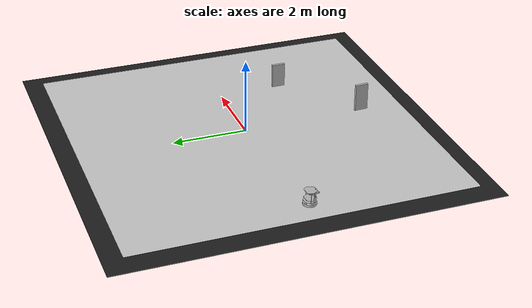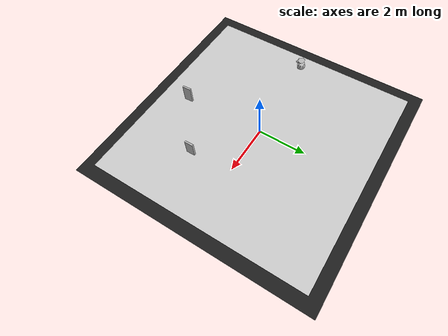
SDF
<sdf version="1.7">
 <world name="default">
  <scene>
   <ambient>0 0 0 1</ambient>
   <shadows>0</shadows>
   <grid>0</grid>
   <background>0.7 0.7 0.7 1</background>
  </scene>
  <light name="sun" type="directional">
   <pose>0 0 10 0 -0 0</pose>
   <diffuse>0.8 0.8 0.8 1</diffuse>
   <specular>0.1 0.1 0.1 1</specular>
   <attenuation>
    <range>1000</range>
    <constant>0.9</constant>
    <linear>0.01</linear>
    <quadratic>0.001</quadratic>
   </attenuation>
   <direction>-0.5 0.5 -1</direction>
   <spot><inner_angle>0</inner_angle><outer_angle>0</outer_angle><falloff>0</falloff></spot>
  </light>
  <model name="ground2">
   <pose>0 0 -0.1 0 -0 0</pose>
   <static>1</static>
   <link name="ground">
    <collision name="ground_coll"><geometry><box><size>8 8 0.01</size></box></geometry></collision>
    <visual name="ground_vis">
     <geometry><box><size>10 10 0.01</size></box></geometry>
     <material>
      <script><uri>file://media/materials/scripts/gazebo.material</uri><name>Gazebo/FlatBlack</name></script>
     </material>
    </visual>
   </link>
  </model>
  <gravity>0 0 -9.8</gravity>
  <magnetic_field>6e-06 2.3e-05 -4.2e-05</magnetic_field>
  <atmosphere type="adiabatic"/>
  <physics name="default_physics" default="0" type="ode">
   <max_step_size>0.001</max_step_size>
   <real_time_factor>1</real_time_factor>
   <real_time_update_rate>1000</real_time_update_rate>
  </physics>
  <spherical_coordinates>
   <surface_model>EARTH_WGS84</surface_model>
   <latitude_deg>0</latitude_deg>
   <longitude_deg>0</longitude_deg>
   <elevation>0</elevation>
   <heading_deg>0</heading_deg>
  </spherical_coordinates>
  <light name="user_point_light_1" type="point">
   <pose>-1.64815 0.604519 1 0 -0 0</pose>
   <diffuse>0.5 0.5 0.5 1</diffuse>
   <specular>0.1 0.1 0.1 1</specular>
   <attenuation>
    <range>20</range>
    <constant>0.5</constant>
    <linear>0.01</linear>
    <quadratic>0.001</quadratic>
   </attenuation>
   <cast_shadows>0</cast_shadows>
   <direction>0 0 -1</direction>
   <spot><inner_angle>0</inner_angle><outer_angle>0</outer_angle><falloff>0</falloff></spot>
  </light>
  <light name="user_point_light_2" type="point">
   <pose>1.63854 1.69565 1 0 -0 0</pose>
   <diffuse>0.5 0.5 0.5 1</diffuse>
   <specular>0.1 0.1 0.1 1</specular>
   <attenuation>
    <range>20</range>
    <constant>0.5</constant>
    <linear>0.01</linear>
    <quadratic>0.001</quadratic>
   </attenuation>
   <cast_shadows>0</cast_shadows>
   <direction>0 0 -1</direction>
   <spot><inner_angle>0</inner_angle><outer_angle>0</outer_angle><falloff>0</falloff></spot>
  </light>
  <light name="user_point_light_3" type="point">
   <pose>0.42 -3.31 1 0 -0 0</pose>
   <diffuse>0.5 0.5 0.5 1</diffuse>
   <specular>0.1 0.1 0.1 1</specular>
   <attenuation>
    <range>20</range>
    <constant>0.5</constant>
    <linear>0.01</linear>
    <quadratic>0.001</quadratic>
   </attenuation>
   <cast_shadows>0</cast_shadows>
   <direction>0 0 -1</direction>
   <spot><inner_angle>0</inner_angle><outer_angle>0</outer_angle><falloff>0</falloff></spot>
  </light>
  <model name="mobile_base">
   <link name="base_footprint">
    <inertial>
     <pose>-0.009496 1.3e-05 0.135573 0 -0 0</pose>
     <mass>4.9213</mass>
     <inertia>
      <ixx>0.142129</ixx>
      <ixy>-4.09257e-06</ixy>
      <ixz>0.0154899</ixz>
      <iyy>0.140784</iyy>
      <iyz>6.52071e-06</iyz>
      <izz>0.0801071</izz>
     </inertia>
    </inertial>
    <collision name="base_footprint_fixed_joint_lump__base_collision">
     <pose>0 0 0.06969 0 -0 0</pose>
     <geometry><cylinder><length>0.10938</length><radius>0.178</radius></cylinder></geometry>
    </collision>
    <collision name="base_footprint_fixed_joint_lump__camera_link_collision_1">
     <pose>-0.118 0 0.2812 0 -0 0</pose>
     <geometry><box><size>0.07271 0.27794 0.073</size></box></geometry>
    </collision>
    <collision name="base_footprint_fixed_joint_lump__caster_back_link_collision_2">
     <pose>-0.135 0 0.0192 -1.5708 0 0</pose>
     <geometry><cylinder><length>0.0176</length><radius>0.017</radius></cylinder></geometry>
     <surface>
      <contact><ode><kp>1e+06</kp><kd>100</kd><max_vel>1</max_vel><min_depth>0.001</min_depth></ode></contact>
      <friction><ode><mu>0</mu><mu2>0</mu2></ode></friction>
     </surface>
    </collision>
    <collision name="base_footprint_fixed_joint_lump__caster_front_link_collision_3">
     <pose>0.115 0 0.0172 -1.5708 0 0</pose>
     <geometry><cylinder><length>0.0176</length><radius>0.017</radius></cylinder></geometry>
     <surface>
      <contact><ode><kp>1e+06</kp><kd>100</kd><max_vel>1</max_vel><min_depth>0.001</min_depth></ode></contact>
      <friction><ode><mu>0</mu><mu2>0</mu2></ode></friction>
     </surface>
    </collision>
    <collision name="base_footprint_fixed_joint_lump__plate_bottom_link_collision_4">
     <pose>0 0 0.1408 0 -0 0</pose>
     <geometry><cylinder><length>0.006</length><radius>0.17</radius></cylinder></geometry>
    </collision>
    <collision name="base_footprint_fixed_joint_lump__plate_middle_link_collision_5">
     <pose>0 0 0.1976 0 -0 0</pose>
     <geometry>
      <mesh>
       <scale>0.001 0.001 0.001</scale>
       <uri>/home/neen/ros_workshop_ws/src/turtlebot/turtlebot_description/meshes/stacks/hexagons/plate_simple.stl</uri>
      </mesh>
     </geometry>
    </collision>
    <collision name="base_footprint_fixed_joint_lump__plate_top_link_collision_6">
     <pose>0 0 0.4068 0 -0 0</pose>
     <geometry>
      <mesh>
       <scale>0.001 0.001 0.001</scale>
       <uri>/home/neen/ros_workshop_ws/src/turtlebot/turtlebot_description/meshes/stacks/hexagons/plate_simple.stl</uri>
      </mesh>
     </geometry>
    </collision>
    <collision name="base_footprint_fixed_joint_lump__pole_bottom_0_link_collision_7">
     <pose>0.12 0.082 0.113 0 -0 0</pose>
     <geometry><cylinder><length>0.0492</length><radius>0.006</radius></cylinder></geometry>
    </collision>
    <collision name="base_footprint_fixed_joint_lump__pole_bottom_1_link_collision_8">
     <pose>0.055 0.12 0.113 0 -0 0</pose>
     <geometry><cylinder><length>0.0492</length><radius>0.006</radius></cylinder></geometry>
    </collision>
    <collision name="base_footprint_fixed_joint_lump__pole_bottom_2_link_collision_9">
     <pose>-0.055 0.12 0.113 0 -0 0</pose>
     <geometry><cylinder><length>0.0492</length><radius>0.006</radius></cylinder></geometry>
    </collision>
    <collision name="base_footprint_fixed_joint_lump__pole_bottom_3_link_collision_10">
     <pose>0.12 -0.082 0.113 0 -0 0</pose>
     <geometry><cylinder><length>0.0492</length><radius>0.006</radius></cylinder></geometry>
    </collision>
    <collision name="base_footprint_fixed_joint_lump__pole_bottom_4_link_collision_11">
     <pose>0.055 -0.12 0.113 0 -0 0</pose>
     <geometry><cylinder><length>0.0492</length><radius>0.006</radius></cylinder></geometry>
    </collision>
    <collision name="base_footprint_fixed_joint_lump__pole_bottom_5_link_collision_12">
     <pose>-0.055 -0.12 0.113 0 -0 0</pose>
     <geometry><cylinder><length>0.0492</length><radius>0.006</radius></cylinder></geometry>
    </collision>
    <collision name="base_footprint_fixed_joint_lump__pole_kinect_0_link_collision_13">
     <pose>-0.1024 0.098 0.2474 0 -0 0</pose>
     <geometry><cylinder><length>0.0936</length><radius>0.006</radius></cylinder></geometry>
    </collision>
    <collision name="base_footprint_fixed_joint_lump__pole_kinect_1_link_collision_14">
     <pose>-0.1024 -0.098 0.2474 0 -0 0</pose>
     <geometry><cylinder><length>0.0936</length><radius>0.006</radius></cylinder></geometry>
    </collision>
    <collision name="base_footprint_fixed_joint_lump__pole_middle_0_link_collision_15">
     <pose>0.0381 0.1505 0.1742 0 -0 0</pose>
     <geometry><cylinder><length>0.0608</length><radius>0.006</radius></cylinder></geometry>
    </collision>
    <collision name="base_footprint_fixed_joint_lump__pole_middle_1_link_collision_16">
     <pose>0.0381 -0.1505 0.1742 0 -0 0</pose>
     <geometry><cylinder><length>0.0608</length><radius>0.006</radius></cylinder></geometry>
    </collision>
    <collision name="base_footprint_fixed_joint_lump__pole_middle_2_link_collision_17">
     <pose>-0.0381 0.1505 0.1742 0 -0 0</pose>
     <geometry><cylinder><length>0.0608</length><radius>0.006</radius></cylinder></geometry>
    </collision>
    <collision name="base_footprint_fixed_joint_lump__pole_middle_3_link_collision_18">
     <pose>-0.0381 -0.1505 0.1742 0 -0 0</pose>
     <geometry><cylinder><length>0.0608</length><radius>0.006</radius></cylinder></geometry>
    </collision>
    <collision name="base_footprint_fixed_joint_lump__pole_top_0_link_collision_19">
     <pose>0.0381 0.1505 0.3022 0 -0 0</pose>
     <geometry><cylinder><length>0.2032</length><radius>0.006</radius></cylinder></geometry>
    </collision>
    <collision name="base_footprint_fixed_joint_lump__pole_top_1_link_collision_20">
     <pose>0.0381 -0.1505 0.3022 0 -0 0</pose>
     <geometry><cylinder><length>0.2032</length><radius>0.006</radius></cylinder></geometry>
    </collision>
    <collision name="base_footprint_fixed_joint_lump__pole_top_2_link_collision_21">
     <pose>-0.0381 0.1505 0.3022 0 -0 0</pose>
     <geometry><cylinder><length>0.2032</length><radius>0.006</radius></cylinder></geometry>
    </collision>
    <collision name="base_footprint_fixed_joint_lump__pole_top_3_link_collision_22">
     <pose>-0.0381 -0.1505 0.3022 0 -0 0</pose>
     <geometry><cylinder><length>0.2032</length><radius>0.006</radius></cylinder></geometry>
    </collision>
    <visual name="base_footprint_fixed_joint_lump__base_link_visual">
     <pose>0.001 0 0.06219 0 -0 0</pose>
     <geometry>
      <mesh>
       <scale>1 1 1</scale>
       <uri>/home/neen/ros_workshop_ws/src/kobuki/kobuki_description/meshes/main_body.dae</uri>
      </mesh>
     </geometry>
    </visual>
    <visual name="base_footprint_fixed_joint_lump__camera_link_visual_1">
     <pose>-0.118 0 0.2812 0 -0 1.5708</pose>
     <geometry>
      <mesh>
       <scale>1 1 1</scale>
       <uri>/home/neen/ros_workshop_ws/src/turtlebot/turtlebot_description/meshes/sensors/kinect.dae</uri>
      </mesh>
     </geometry>
    </visual>
    <visual name="base_footprint_fixed_joint_lump__plate_bottom_link_visual_2">
     <pose>0.02364 0 0.1408 0 -0 0</pose>
     <geometry>
      <mesh>
       <scale>1 1 1</scale>
       <uri>/home/neen/ros_workshop_ws/src/turtlebot/turtlebot_description/meshes/stacks/hexagons/plate_bottom.dae</uri>
      </mesh>
     </geometry>
    </visual>
    <visual name="base_footprint_fixed_joint_lump__plate_middle_link_visual_3">
     <pose>-0.01364 0 0.1976 0 -0 0</pose>
     <geometry>
      <mesh>
       <scale>1 1 1</scale>
       <uri>/home/neen/ros_workshop_ws/src/turtlebot/turtlebot_description/meshes/stacks/hexagons/plate_middle.dae</uri>
      </mesh>
     </geometry>
    </visual>
    <visual name="base_footprint_fixed_joint_lump__plate_top_link_visual_4">
     <pose>-0.01364 0 0.4068 0 -0 0</pose>
     <geometry>
      <mesh>
       <scale>1 1 1</scale>
       <uri>/home/neen/ros_workshop_ws/src/turtlebot/turtlebot_description/meshes/stacks/hexagons/plate_top.dae</uri>
      </mesh>
     </geometry>
    </visual>
    <visual name="base_footprint_fixed_joint_lump__pole_bottom_0_link_visual_5">
     <pose>0.12 0.082 0.113 0 -0 0</pose>
     <geometry>
      <mesh>
       <scale>1 1 1</scale>
       <uri>/home/neen/ros_workshop_ws/src/turtlebot/turtlebot_description/meshes/stacks/hexagons/pole_bottom.dae</uri>
      </mesh>
     </geometry>
    </visual>
    <visual name="base_footprint_fixed_joint_lump__pole_bottom_1_link_visual_6">
     <pose>0.055 0.12 0.113 0 -0 0</pose>
     <geometry>
      <mesh>
       <scale>1 1 1</scale>
       <uri>/home/neen/ros_workshop_ws/src/turtlebot/turtlebot_description/meshes/stacks/hexagons/pole_bottom.dae</uri>
      </mesh>
     </geometry>
    </visual>
    <visual name="base_footprint_fixed_joint_lump__pole_bottom_2_link_visual_7">
     <pose>-0.055 0.12 0.113 0 -0 0</pose>
     <geometry>
      <mesh>
       <scale>1 1 1</scale>
       <uri>/home/neen/ros_workshop_ws/src/turtlebot/turtlebot_description/meshes/stacks/hexagons/pole_bottom.dae</uri>
      </mesh>
     </geometry>
    </visual>
    <visual name="base_footprint_fixed_joint_lump__pole_bottom_3_link_visual_8">
     <pose>0.12 -0.082 0.113 0 -0 0</pose>
     <geometry>
      <mesh>
       <scale>1 1 1</scale>
       <uri>/home/neen/ros_workshop_ws/src/turtlebot/turtlebot_description/meshes/stacks/hexagons/pole_bottom.dae</uri>
      </mesh>
     </geometry>
    </visual>
    <visual name="base_footprint_fixed_joint_lump__pole_bottom_4_link_visual_9">
     <pose>0.055 -0.12 0.113 0 -0 0</pose>
     <geometry>
      <mesh>
       <scale>1 1 1</scale>
       <uri>/home/neen/ros_workshop_ws/src/turtlebot/turtlebot_description/meshes/stacks/hexagons/pole_bottom.dae</uri>
      </mesh>
     </geometry>
    </visual>
    <visual name="base_footprint_fixed_joint_lump__pole_bottom_5_link_visual_10">
     <pose>-0.055 -0.12 0.113 0 -0 0</pose>
     <geometry>
      <mesh>
       <scale>1 1 1</scale>
       <uri>/home/neen/ros_workshop_ws/src/turtlebot/turtlebot_description/meshes/stacks/hexagons/pole_bottom.dae</uri>
      </mesh>
     </geometry>
    </visual>
    <visual name="base_footprint_fixed_joint_lump__pole_kinect_0_link_visual_11">
     <pose>-0.1024 0.098 0.2474 0 -0 0</pose>
     <geometry>
      <mesh>
       <scale>1 1 1</scale>
       <uri>/home/neen/ros_workshop_ws/src/turtlebot/turtlebot_description/meshes/stacks/hexagons/pole_kinect.dae</uri>
      </mesh>
     </geometry>
    </visual>
    <visual name="base_footprint_fixed_joint_lump__pole_kinect_1_link_visual_12">
     <pose>-0.1024 -0.098 0.2474 0 -0 0</pose>
     <geometry>
      <mesh>
       <scale>1 1 1</scale>
       <uri>/home/neen/ros_workshop_ws/src/turtlebot/turtlebot_description/meshes/stacks/hexagons/pole_kinect.dae</uri>
      </mesh>
     </geometry>
    </visual>
    <visual name="base_footprint_fixed_joint_lump__pole_middle_0_link_visual_13">
     <pose>0.0381 0.1505 0.1742 3.14159 -0 3.14159</pose>
     <geometry>
      <mesh>
       <scale>1 1 1</scale>
       <uri>/home/neen/ros_workshop_ws/src/turtlebot/turtlebot_description/meshes/stacks/hexagons/pole_middle.dae</uri>
      </mesh>
     </geometry>
    </visual>
    <visual name="base_footprint_fixed_joint_lump__pole_middle_1_link_visual_14">
     <pose>0.0381 -0.1505 0.1742 3.14159 -0 3.14159</pose>
     <geometry>
      <mesh>
       <scale>1 1 1</scale>
       <uri>/home/neen/ros_workshop_ws/src/turtlebot/turtlebot_description/meshes/stacks/hexagons/pole_middle.dae</uri>
      </mesh>
     </geometry>
    </visual>
    <visual name="base_footprint_fixed_joint_lump__pole_middle_2_link_visual_15">
     <pose>-0.0381 0.1505 0.1742 3.14159 -0 3.14159</pose>
     <geometry>
      <mesh>
       <scale>1 1 1</scale>
       <uri>/home/neen/ros_workshop_ws/src/turtlebot/turtlebot_description/meshes/stacks/hexagons/pole_middle.dae</uri>
      </mesh>
     </geometry>
    </visual>
    <visual name="base_footprint_fixed_joint_lump__pole_middle_3_link_visual_16">
     <pose>-0.0381 -0.1505 0.1742 3.14159 -0 3.14159</pose>
     <geometry>
      <mesh>
       <scale>1 1 1</scale>
       <uri>/home/neen/ros_workshop_ws/src/turtlebot/turtlebot_description/meshes/stacks/hexagons/pole_middle.dae</uri>
      </mesh>
     </geometry>
    </visual>
    <visual name="base_footprint_fixed_joint_lump__pole_top_0_link_visual_17">
     <pose>0.0381 0.1505 0.3022 0 -0 0</pose>
     <geometry>
      <mesh>
       <scale>1 1 1</scale>
       <uri>/home/neen/ros_workshop_ws/src/turtlebot/turtlebot_description/meshes/stacks/hexagons/pole_top.dae</uri>
      </mesh>
     </geometry>
    </visual>
    <visual name="base_footprint_fixed_joint_lump__pole_top_1_link_visual_18">
     <pose>0.0381 -0.1505 0.3022 0 -0 0</pose>
     <geometry>
      <mesh>
       <scale>1 1 1</scale>
       <uri>/home/neen/ros_workshop_ws/src/turtlebot/turtlebot_description/meshes/stacks/hexagons/pole_top.dae</uri>
      </mesh>
     </geometry>
    </visual>
    <visual name="base_footprint_fixed_joint_lump__pole_top_2_link_visual_19">
     <pose>-0.0381 0.1505 0.3022 0 -0 0</pose>
     <geometry>
      <mesh>
       <scale>1 1 1</scale>
       <uri>/home/neen/ros_workshop_ws/src/turtlebot/turtlebot_description/meshes/stacks/hexagons/pole_top.dae</uri>
      </mesh>
     </geometry>
    </visual>
    <visual name="base_footprint_fixed_joint_lump__pole_top_3_link_visual_20">
     <pose>-0.0381 -0.1505 0.3022 0 -0 0</pose>
     <geometry>
      <mesh>
       <scale>1 1 1</scale>
       <uri>/home/neen/ros_workshop_ws/src/turtlebot/turtlebot_description/meshes/stacks/hexagons/pole_top.dae</uri>
      </mesh>
     </geometry>
    </visual>
    <sensor name="bumpers" type="contact">
     <always_on>1</always_on>
     <update_rate>50</update_rate>
     <visualize>1</visualize>
     <contact>
      <collision>base_footprint_fixed_joint_lump__base_collision</collision>
      <topic>__default_topic__</topic>
     </contact>
     <pose>0 0 0.0102 0 -0 0</pose>
    </sensor>
    <sensor name="camera" type="depth">
     <always_on>1</always_on>
     <update_rate>20</update_rate>
     <camera>
      <horizontal_fov>1.0472</horizontal_fov>
      <image><format>B8G8R8</format><width>640</width><height>480</height></image>
      <clip><near>0.05</near><far>8</far></clip>
     </camera>
     <plugin name="kinect_camera_controller" filename="libgazebo_ros_openni_kinect.so">
      <cameraName>camera</cameraName>
      <alwaysOn>1</alwaysOn>
      <updateRate>10</updateRate>
      <imageTopicName>rgb/image_raw</imageTopicName>
      <depthImageTopicName>depth/image_raw</depthImageTopicName>
      <pointCloudTopicName>depth/points</pointCloudTopicName>
      <cameraInfoTopicName>rgb/camera_info</cameraInfoTopicName>
      <depthImageCameraInfoTopicName>depth/camera_info</depthImageCameraInfoTopicName>
      <frameName>camera_depth_optical_frame</frameName>
      <baseline>0.1</baseline>
      <distortion_k1>0.0</distortion_k1>
      <distortion_k2>0.0</distortion_k2>
      <distortion_k3>0.0</distortion_k3>
      <distortion_t1>0.0</distortion_t1>
      <distortion_t2>0.0</distortion_t2>
      <pointCloudCutoff>0.4</pointCloudCutoff>
      <robotNamespace>/</robotNamespace>
     </plugin>
     <pose>-0.118 0 0.2812 0 -0 0</pose>
    </sensor>
    <sensor name="cliff_sensor_front" type="ray">
     <always_on>1</always_on>
     <update_rate>50</update_rate>
     <visualize>1</visualize>
     <ray>
      <scan>
       <horizontal>
        <samples>50</samples>
        <resolution>1</resolution>
        <min_angle>-0.0436</min_angle>
        <max_angle>0.0436</max_angle>
       </horizontal>
       <vertical><samples>1</samples><min_angle>0</min_angle><max_angle>0</max_angle></vertical>
      </scan>
      <range><min>0.01</min><max>0.15</max><resolution>1</resolution></range>
     </ray>
     <pose>0.156 0 0.0316 3.14159 1.57079 3.14159</pose>
    </sensor>
    <sensor name="cliff_sensor_left" type="ray">
     <always_on>1</always_on>
     <update_rate>50</update_rate>
     <visualize>1</visualize>
     <ray>
      <scan>
       <horizontal>
        <samples>50</samples>
        <resolution>1</resolution>
        <min_angle>-0.0436</min_angle>
        <max_angle>0.0436</max_angle>
       </horizontal>
       <vertical><samples>1</samples><min_angle>0</min_angle><max_angle>0</max_angle></vertical>
      </scan>
      <range><min>0.01</min><max>0.15</max><resolution>1</resolution></range>
     </ray>
     <pose>0.08734 0.13601 0.0316 3.14159 1.57079 3.14159</pose>
    </sensor>
    <sensor name="cliff_sensor_right" type="ray">
     <always_on>1</always_on>
     <update_rate>50</update_rate>
     <visualize>1</visualize>
     <ray>
      <scan>
       <horizontal>
        <samples>50</samples>
        <resolution>1</resolution>
        <min_angle>-0.0436</min_angle>
        <max_angle>0.0436</max_angle>
       </horizontal>
       <vertical><samples>1</samples><min_angle>0</min_angle><max_angle>0</max_angle></vertical>
      </scan>
      <range><min>0.01</min><max>0.15</max><resolution>1</resolution></range>
     </ray>
     <pose>0.085 -0.13601 0.0316 3.14159 1.57079 3.14159</pose>
    </sensor>
    <sensor name="imu" type="imu">
     <always_on>1</always_on>
     <update_rate>50</update_rate>
     <visualize>0</visualize>
     <imu>
      <noise>
       <type>gaussian</type>
       <rate><mean>0.0</mean><stddev>1.96e-06</stddev><bias_mean>0.0</bias_mean><bias_stddev>0.0</bias_stddev></rate>
       <accel>
        <mean>0.0</mean>
        <stddev>1.7e-2</stddev>
        <bias_mean>0.1</bias_mean>
        <bias_stddev>0.001</bias_stddev>
       </accel>
      </noise>
     </imu>
     <pose>0.056 0.062 0.0304 0 -0 0</pose>
    </sensor>
   </link>
   <joint name="wheel_left_joint" type="revolute">
    <pose relative_to="base_footprint">0 0.115 0.0352 -1.5708 0 0</pose>
    <parent>base_footprint</parent>
    <child>wheel_left_link</child>
    <axis>
     <xyz>0 0 1</xyz>
     <limit><lower>-1e+16</lower><upper>1e+16</upper></limit>
     <dynamics><spring_reference>0</spring_reference><spring_stiffness>0</spring_stiffness></dynamics>
    </axis>
   </joint>
   <link name="wheel_left_link">
    <pose relative_to="wheel_left_joint">0 0 0 0 -0 0</pose>
    <inertial>
     <mass>0.01</mass>
     <inertia><ixx>0.001</ixx><ixy>0</ixy><ixz>0</ixz><iyy>0.001</iyy><iyz>0</iyz><izz>0.001</izz></inertia>
    </inertial>
    <collision name="wheel_left_link_collision">
     <geometry><cylinder><length>0.0206</length><radius>0.035</radius></cylinder></geometry>
     <surface>
      <contact><ode><kp>1e+06</kp><kd>100</kd><max_vel>1</max_vel><min_depth>0.001</min_depth></ode></contact>
      <friction><ode><mu>1</mu><mu2>1</mu2></ode></friction>
     </surface>
    </collision>
    <visual name="wheel_left_link_visual">
     <geometry>
      <mesh>
       <scale>1 1 1</scale>
       <uri>/home/neen/ros_workshop_ws/src/kobuki/kobuki_description/meshes/wheel.dae</uri>
      </mesh>
     </geometry>
    </visual>
   </link>
   <joint name="wheel_right_joint" type="revolute">
    <pose relative_to="base_footprint">0 -0.115 0.0352 -1.5708 0 0</pose>
    <parent>base_footprint</parent>
    <child>wheel_right_link</child>
    <axis>
     <xyz>0 0 1</xyz>
     <limit><lower>-1e+16</lower><upper>1e+16</upper></limit>
     <dynamics><spring_reference>0</spring_reference><spring_stiffness>0</spring_stiffness></dynamics>
    </axis>
   </joint>
   <link name="wheel_right_link">
    <pose relative_to="wheel_right_joint">0 0 0 0 -0 0</pose>
    <inertial>
     <mass>0.01</mass>
     <inertia><ixx>0.001</ixx><ixy>0</ixy><ixz>0</ixz><iyy>0.001</iyy><iyz>0</iyz><izz>0.001</izz></inertia>
    </inertial>
    <collision name="wheel_right_link_collision">
     <geometry><cylinder><length>0.0206</length><radius>0.035</radius></cylinder></geometry>
     <surface>
      <contact><ode><kp>1e+06</kp><kd>100</kd><max_vel>1</max_vel><min_depth>0.001</min_depth></ode></contact>
      <friction><ode><mu>1</mu><mu2>1</mu2></ode></friction>
     </surface>
    </collision>
    <visual name="wheel_right_link_visual">
     <geometry>
      <mesh>
       <scale>1 1 1</scale>
       <uri>/home/neen/ros_workshop_ws/src/kobuki/kobuki_description/meshes/wheel.dae</uri>
      </mesh>
     </geometry>
    </visual>
   </link>
   <static>0</static>
   <plugin name="kobuki_controller" filename="libgazebo_ros_kobuki.so">
    <publish_tf>1</publish_tf>
    <left_wheel_joint_name>wheel_left_joint</left_wheel_joint_name>
    <right_wheel_joint_name>wheel_right_joint</right_wheel_joint_name>
    <wheel_separation>.230</wheel_separation>
    <wheel_diameter>0.070</wheel_diameter>
    <torque>1.0</torque>
    <velocity_command_timeout>0.6</velocity_command_timeout>
    <cliff_sensor_left_name>cliff_sensor_left</cliff_sensor_left_name>
    <cliff_sensor_center_name>cliff_sensor_front</cliff_sensor_center_name>
    <cliff_sensor_right_name>cliff_sensor_right</cliff_sensor_right_name>
    <cliff_detection_threshold>0.04</cliff_detection_threshold>
    <bumper_name>bumpers</bumper_name>
    <imu_name>imu</imu_name>
    <robotNamespace>/</robotNamespace>
   </plugin>
   <pose>-3.89755 -0.2301 -0.000342 -7.7e-05 -0.013773 1.61671</pose>
  </model>
  <model name="course">
   <static>1</static>
   <link name="course_link">
    <collision name="course_collision">
     <geometry><plane><normal>0 0 1</normal><size>9 9</size></plane></geometry>
     <surface><friction><ode><mu>100</mu><mu2>50</mu2></ode></friction></surface>
    </collision>
    <visual name="course_visual">
     <cast_shadows>0</cast_shadows>
     <geometry><plane><normal>0 0 1</normal><size>9 9</size></plane></geometry>
     <material>
      <script>
       <uri>model://turtlebot3_autorace_2020/course/materials/scripts</uri>
       <uri>model://turtlebot3_autorace_2020/course/materials/textures</uri>
       <name>course</name>
      </script>
     </material>
    </visual>
   </link>
   <pose>0 0 0 0 0 -3.14</pose>
  </model>
  <model name="traffic_stop">
   <static>1</static>
   <link name="box">
    <collision name="collision"><geometry><box><size>0.36 0.075 0.75</size></box></geometry></collision>
    <visual name="visual">
     <geometry><box><size>0.36 0.075 0.75</size></box></geometry>
     <material>
      <script>
       <uri>model://turtlebot3_autorace_2020/traffic_stop/materials/scripts</uri>
       <uri>model://turtlebot3_autorace_2020/traffic_stop/materials/textures</uri>
       <name>traffic_stop</name>
      </script>
     </material>
    </visual>
   </link>
   <pose>0.127844 -3.35784 0.359048 0 0 -1.51613</pose>
  </model>
  <model name="traffic_left">
   <static>1</static>
   <link name="box">
    <pose>1.08 -0.838 0.125 0 -0 -1.57</pose>
    <collision name="collision"><geometry><box><size>0.36 0.075 0.75</size></box></geometry></collision>
    <visual name="visual">
     <geometry><box><size>0.36 0.075 0.75</size></box></geometry>
     <material>
      <script>
       <uri>model://turtlebot3_autorace_2020/traffic_left/materials/scripts</uri>
       <uri>model://turtlebot3_autorace_2020/traffic_left/materials/textures</uri>
       <name>traffic_left</name>
      </script>
     </material>
    </visual>
   </link>
   <pose>1.10478 -0.893767 0.14936 0 -0 0</pose>
  </model>
 </world>
</sdf>
